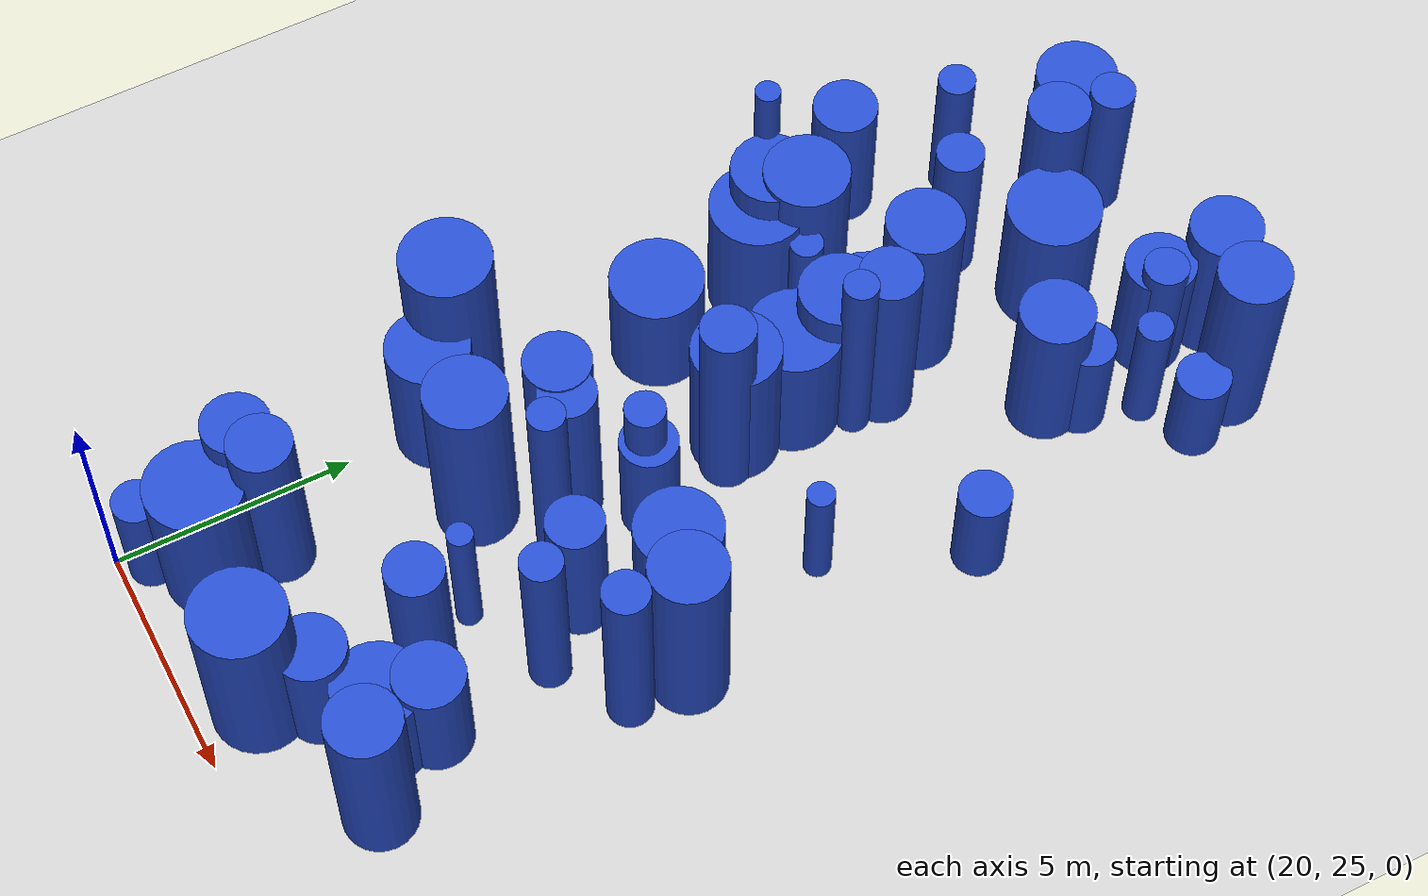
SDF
<sdf version="1.6">
 <world name="default">
  <model name="ground_plane">
   <static>1</static>
   <link name="link">
    <collision name="collision">
     <geometry><plane><normal>0 0 1</normal><size>100 100</size></plane></geometry>
     <surface><friction><ode><mu>100</mu><mu2>50</mu2></ode></friction></surface>
    </collision>
    <visual name="visual">
     <cast_shadows>0</cast_shadows>
     <geometry><plane><normal>0 0 1</normal><size>100 100</size></plane></geometry>
     <material>
      <script><uri>file://media/materials/scripts/gazebo.material</uri><name>Gazebo/Grey</name></script>
     </material>
    </visual>
   </link>
  </model>
  <model name="6">
   <static>0</static>
   <link name="link">
    <inertial>
     <mass>2</mass>
     <inertia><ixx>1.37461</ixx><ixy>0</ixy><ixz>0</ixz><iyy>1.37461</iyy><iyz>0</iyz><izz>0.826308</izz></inertia>
    </inertial>
    <collision name="collision">
     <geometry><cylinder><length>2.40182</length><radius>0.909015</radius></cylinder></geometry>
     <surface><contact><collide_without_contact>1</collide_without_contact></contact></surface>
    </collision>
    <visual name="visual">
     <geometry><cylinder><length>2.40182</length><radius>0.909015</radius></cylinder></geometry>
     <material>
      <script><uri>file://media/materials/scripts/gazebo.material</uri><name>Gazebo/Blue</name></script>
     </material>
    </visual>
    <gravity>0</gravity>
   </link>
   <pose>25.9791 28.1484 1.20091 0 -0 0</pose>
  </model>
  <model name="23">
   <static>0</static>
   <link name="link">
    <inertial>
     <mass>2</mass>
     <inertia><ixx>2.13264</ixx><ixy>0</ixy><ixz>0</ixz><iyy>2.13264</iyy><iyz>0</iyz><izz>0.34742</izz></inertia>
    </inertial>
    <collision name="collision">
     <geometry><cylinder><length>3.42835</length><radius>0.589423</radius></cylinder></geometry>
     <surface><contact><collide_without_contact>1</collide_without_contact></contact></surface>
    </collision>
    <visual name="visual">
     <geometry><cylinder><length>3.42835</length><radius>0.589423</radius></cylinder></geometry>
     <material>
      <script><uri>file://media/materials/scripts/gazebo.material</uri><name>Gazebo/Blue</name></script>
     </material>
    </visual>
    <gravity>0</gravity>
   </link>
   <pose>25.0737 32.6969 1.71417 0 -0 0</pose>
  </model>
  <model name="26">
   <static>0</static>
   <link name="link">
    <inertial>
     <mass>2</mass>
     <inertia><ixx>2.66427</ixx><ixy>0</ixy><ixz>0</ixz><iyy>2.66427</iyy><iyz>0</iyz><izz>0.704227</izz></inertia>
    </inertial>
    <collision name="collision">
     <geometry><cylinder><length>3.72464</length><radius>0.839182</radius></cylinder></geometry>
     <surface><contact><collide_without_contact>1</collide_without_contact></contact></surface>
    </collision>
    <visual name="visual">
     <geometry><cylinder><length>3.72464</length><radius>0.839182</radius></cylinder></geometry>
     <material>
      <script><uri>file://media/materials/scripts/gazebo.material</uri><name>Gazebo/Blue</name></script>
     </material>
    </visual>
    <gravity>0</gravity>
   </link>
   <pose>19.7542 39.6332 1.86232 0 -0 0</pose>
  </model>
  <model name="31">
   <static>0</static>
   <link name="link">
    <inertial>
     <mass>2</mass>
     <inertia><ixx>2.57392</ixx><ixy>0</ixy><ixz>0</ixz><iyy>2.57392</iyy><iyz>0</iyz><izz>0.71737</izz></inertia>
    </inertial>
    <collision name="collision">
     <geometry><cylinder><length>3.64574</length><radius>0.846977</radius></cylinder></geometry>
     <surface><contact><collide_without_contact>1</collide_without_contact></contact></surface>
    </collision>
    <visual name="visual">
     <geometry><cylinder><length>3.64574</length><radius>0.846977</radius></cylinder></geometry>
     <material>
      <script><uri>file://media/materials/scripts/gazebo.material</uri><name>Gazebo/Blue</name></script>
     </material>
    </visual>
    <gravity>0</gravity>
   </link>
   <pose>22.8649 39.5204 1.82287 0 -0 0</pose>
  </model>
  <model name="37">
   <static>0</static>
   <link name="link">
    <inertial>
     <mass>2</mass>
     <inertia><ixx>3.04398</ixx><ixy>0</ixy><ixz>0</ixz><iyy>3.04398</iyy><iyz>0</iyz><izz>0.92073</izz></inertia>
    </inertial>
    <collision name="collision">
     <geometry><cylinder><length>3.93722</length><radius>0.959547</radius></cylinder></geometry>
     <surface><contact><collide_without_contact>1</collide_without_contact></contact></surface>
    </collision>
    <visual name="visual">
     <geometry><cylinder><length>3.93722</length><radius>0.959547</radius></cylinder></geometry>
     <material>
      <script><uri>file://media/materials/scripts/gazebo.material</uri><name>Gazebo/Blue</name></script>
     </material>
    </visual>
    <gravity>0</gravity>
   </link>
   <pose>24.2494 26.2747 1.96861 0 -0 0</pose>
  </model>
  <model name="61">
   <static>0</static>
   <link name="link">
    <inertial>
     <mass>2</mass>
     <inertia><ixx>1.98038</ixx><ixy>0</ixy><ixz>0</ixz><iyy>1.98038</iyy><iyz>0</iyz><izz>0.205126</izz></inertia>
    </inertial>
    <collision name="collision">
     <geometry><cylinder><length>3.35662</length><radius>0.452909</radius></cylinder></geometry>
     <surface><contact><collide_without_contact>1</collide_without_contact></contact></surface>
    </collision>
    <visual name="visual">
     <geometry><cylinder><length>3.35662</length><radius>0.452909</radius></cylinder></geometry>
     <material>
      <script><uri>file://media/materials/scripts/gazebo.material</uri><name>Gazebo/Blue</name></script>
     </material>
    </visual>
    <gravity>0</gravity>
   </link>
   <pose>25.1371 45.5648 1.67831 0 -0 0</pose>
  </model>
  <model name="62">
   <static>0</static>
   <link name="link">
    <inertial>
     <mass>2</mass>
     <inertia><ixx>2.47347</ixx><ixy>0</ixy><ixz>0</ixz><iyy>2.47347</iyy><iyz>0</iyz><izz>0.98743</izz></inertia>
    </inertial>
    <collision name="collision">
     <geometry><cylinder><length>3.44652</length><radius>0.993695</radius></cylinder></geometry>
     <surface><contact><collide_without_contact>1</collide_without_contact></contact></surface>
    </collision>
    <visual name="visual">
     <geometry><cylinder><length>3.44652</length><radius>0.993695</radius></cylinder></geometry>
     <material>
      <script><uri>file://media/materials/scripts/gazebo.material</uri><name>Gazebo/Blue</name></script>
     </material>
    </visual>
    <gravity>0</gravity>
   </link>
   <pose>21.1142 26.6464 1.72326 0 -0 0</pose>
  </model>
  <model name="71">
   <static>0</static>
   <link name="link">
    <inertial>
     <mass>2</mass>
     <inertia><ixx>3.59264</ixx><ixy>0</ixy><ixz>0</ixz><iyy>3.59264</iyy><iyz>0</iyz><izz>0.399079</izz></inertia>
    </inertial>
    <collision name="collision">
     <geometry><cylinder><length>4.51205</length><radius>0.631727</radius></cylinder></geometry>
     <surface><contact><collide_without_contact>1</collide_without_contact></contact></surface>
    </collision>
    <visual name="visual">
     <geometry><cylinder><length>4.51205</length><radius>0.631727</radius></cylinder></geometry>
     <material>
      <script><uri>file://media/materials/scripts/gazebo.material</uri><name>Gazebo/Blue</name></script>
     </material>
    </visual>
    <gravity>0</gravity>
   </link>
   <pose>23.478 40.2505 2.25603 0 -0 0</pose>
  </model>
  <model name="90">
   <static>0</static>
   <link name="link">
    <inertial>
     <mass>2</mass>
     <inertia><ixx>1.25348</ixx><ixy>0</ixy><ixz>0</ixz><iyy>1.25348</iyy><iyz>0</iyz><izz>0.890795</izz></inertia>
    </inertial>
    <collision name="collision">
     <geometry><cylinder><length>2.20193</length><radius>0.943819</radius></cylinder></geometry>
     <surface><contact><collide_without_contact>1</collide_without_contact></contact></surface>
    </collision>
    <visual name="visual">
     <geometry><cylinder><length>2.20193</length><radius>0.943819</radius></cylinder></geometry>
     <material>
      <script><uri>file://media/materials/scripts/gazebo.material</uri><name>Gazebo/Blue</name></script>
     </material>
    </visual>
    <gravity>0</gravity>
   </link>
   <pose>22.3331 40.4778 1.10096 0 -0 0</pose>
  </model>
  <model name="118">
   <static>0</static>
   <link name="link">
    <inertial>
     <mass>2</mass>
     <inertia><ixx>1.18813</ixx><ixy>0</ixy><ixz>0</ixz><iyy>1.18813</iyy><iyz>0</iyz><izz>0.232355</izz></inertia>
    </inertial>
    <collision name="collision">
     <geometry><cylinder><length>2.53608</length><radius>0.482032</radius></cylinder></geometry>
     <surface><contact><collide_without_contact>1</collide_without_contact></contact></surface>
    </collision>
    <visual name="visual">
     <geometry><cylinder><length>2.53608</length><radius>0.482032</radius></cylinder></geometry>
     <material>
      <script><uri>file://media/materials/scripts/gazebo.material</uri><name>Gazebo/Blue</name></script>
     </material>
    </visual>
    <gravity>0</gravity>
   </link>
   <pose>20.3931 25.6293 1.26804 0 -0 0</pose>
  </model>
  <model name="121">
   <static>0</static>
   <link name="link">
    <inertial>
     <mass>2</mass>
     <inertia><ixx>2.19147</ixx><ixy>0</ixy><ixz>0</ixz><iyy>2.19147</iyy><iyz>0</iyz><izz>0.213321</izz></inertia>
    </inertial>
    <collision name="collision">
     <geometry><cylinder><length>3.53679</length><radius>0.461867</radius></cylinder></geometry>
     <surface><contact><collide_without_contact>1</collide_without_contact></contact></surface>
    </collision>
    <visual name="visual">
     <geometry><cylinder><length>3.53679</length><radius>0.461867</radius></cylinder></geometry>
     <material>
      <script><uri>file://media/materials/scripts/gazebo.material</uri><name>Gazebo/Blue</name></script>
     </material>
    </visual>
    <gravity>0</gravity>
   </link>
   <pose>21.0757 46.7296 1.76839 0 -0 0</pose>
  </model>
  <model name="130">
   <static>0</static>
   <link name="link">
    <inertial>
     <mass>2</mass>
     <inertia><ixx>2.08421</ixx><ixy>0</ixy><ixz>0</ixz><iyy>2.08421</iyy><iyz>0</iyz><izz>0.73609</izz></inertia>
    </inertial>
    <collision name="collision">
     <geometry><cylinder><length>3.20889</length><radius>0.857957</radius></cylinder></geometry>
     <surface><contact><collide_without_contact>1</collide_without_contact></contact></surface>
    </collision>
    <visual name="visual">
     <geometry><cylinder><length>3.20889</length><radius>0.857957</radius></cylinder></geometry>
     <material>
      <script><uri>file://media/materials/scripts/gazebo.material</uri><name>Gazebo/Blue</name></script>
     </material>
    </visual>
    <gravity>0</gravity>
   </link>
   <pose>20.1641 31.8975 1.60445 0 -0 0</pose>
  </model>
  <model name="131">
   <static>0</static>
   <link name="link">
    <inertial>
     <mass>2</mass>
     <inertia><ixx>1.453</ixx><ixy>0</ixy><ixz>0</ixz><iyy>1.453</iyy><iyz>0</iyz><izz>0.351605</izz></inertia>
    </inertial>
    <collision name="collision">
     <geometry><cylinder><length>2.76824</length><radius>0.592963</radius></cylinder></geometry>
     <surface><contact><collide_without_contact>1</collide_without_contact></contact></surface>
    </collision>
    <visual name="visual">
     <geometry><cylinder><length>2.76824</length><radius>0.592963</radius></cylinder></geometry>
     <material>
      <script><uri>file://media/materials/scripts/gazebo.material</uri><name>Gazebo/Blue</name></script>
     </material>
    </visual>
    <gravity>0</gravity>
   </link>
   <pose>23.7772 34.883 1.38412 0 -0 0</pose>
  </model>
  <model name="133">
   <static>0</static>
   <link name="link">
    <inertial>
     <mass>2</mass>
     <inertia><ixx>3.39922</ixx><ixy>0</ixy><ixz>0</ixz><iyy>3.39922</iyy><iyz>0</iyz><izz>0.407342</izz></inertia>
    </inertial>
    <collision name="collision">
     <geometry><cylinder><length>4.37873</length><radius>0.638233</radius></cylinder></geometry>
     <surface><contact><collide_without_contact>1</collide_without_contact></contact></surface>
    </collision>
    <visual name="visual">
     <geometry><cylinder><length>4.37873</length><radius>0.638233</radius></cylinder></geometry>
     <material>
      <script><uri>file://media/materials/scripts/gazebo.material</uri><name>Gazebo/Blue</name></script>
     </material>
    </visual>
    <gravity>0</gravity>
   </link>
   <pose>21.4511 45.1741 2.18937 0 -0 0</pose>
  </model>
  <model name="152">
   <static>0</static>
   <link name="link">
    <inertial>
     <mass>2</mass>
     <inertia><ixx>3.0223</ixx><ixy>0</ixy><ixz>0</ixz><iyy>3.0223</iyy><iyz>0</iyz><izz>0.469931</izz></inertia>
    </inertial>
    <collision name="collision">
     <geometry><cylinder><length>4.0895</length><radius>0.685515</radius></cylinder></geometry>
     <surface><contact><collide_without_contact>1</collide_without_contact></contact></surface>
    </collision>
    <visual name="visual">
     <geometry><cylinder><length>4.0895</length><radius>0.685515</radius></cylinder></geometry>
     <material>
      <script><uri>file://media/materials/scripts/gazebo.material</uri><name>Gazebo/Blue</name></script>
     </material>
    </visual>
    <gravity>0</gravity>
   </link>
   <pose>22.115 33.7828 2.04475 0 -0 0</pose>
  </model>
  <model name="166">
   <static>0</static>
   <link name="link">
    <inertial>
     <mass>2</mass>
     <inertia><ixx>1.5574</ixx><ixy>0</ixy><ixz>0</ixz><iyy>1.5574</iyy><iyz>0</iyz><izz>0.124894</izz></inertia>
    </inertial>
    <collision name="collision">
     <geometry><cylinder><length>2.99495</length><radius>0.353403</radius></cylinder></geometry>
     <surface><contact><collide_without_contact>1</collide_without_contact></contact></surface>
    </collision>
    <visual name="visual">
     <geometry><cylinder><length>2.99495</length><radius>0.353403</radius></cylinder></geometry>
     <material>
      <script><uri>file://media/materials/scripts/gazebo.material</uri><name>Gazebo/Blue</name></script>
     </material>
    </visual>
    <gravity>0</gravity>
   </link>
   <pose>26.0606 44.8052 1.49748 0 -0 0</pose>
  </model>
  <model name="169">
   <static>0</static>
   <link name="link">
    <inertial>
     <mass>2</mass>
     <inertia><ixx>3.98314</ixx><ixy>0</ixy><ixz>0</ixz><iyy>3.98314</iyy><iyz>0</iyz><izz>0.125619</izz></inertia>
    </inertial>
    <collision name="collision">
     <geometry><cylinder><length>4.84995</length><radius>0.354428</radius></cylinder></geometry>
     <surface><contact><collide_without_contact>1</collide_without_contact></contact></surface>
    </collision>
    <visual name="visual">
     <geometry><cylinder><length>4.84995</length><radius>0.354428</radius></cylinder></geometry>
     <material>
      <script><uri>file://media/materials/scripts/gazebo.material</uri><name>Gazebo/Blue</name></script>
     </material>
    </visual>
    <gravity>0</gravity>
   </link>
   <pose>23.6433 39.4979 2.42497 0 -0 0</pose>
  </model>
  <model name="185">
   <static>0</static>
   <link name="link">
    <inertial>
     <mass>2</mass>
     <inertia>
      <ixx>0.926216</ixx>
      <ixy>0</ixy>
      <ixz>0</ixz>
      <iyy>0.926216</iyy>
      <iyz>0</iyz>
      <izz>0.103612</izz>
     </inertia>
    </inertial>
    <collision name="collision">
     <geometry><cylinder><length>2.29052</length><radius>0.321888</radius></cylinder></geometry>
     <surface><contact><collide_without_contact>1</collide_without_contact></contact></surface>
    </collision>
    <visual name="visual">
     <geometry><cylinder><length>2.29052</length><radius>0.321888</radius></cylinder></geometry>
     <material>
      <script><uri>file://media/materials/scripts/gazebo.material</uri><name>Gazebo/Blue</name></script>
     </material>
    </visual>
    <gravity>0</gravity>
   </link>
   <pose>19.2132 47.1003 1.14526 0 -0 0</pose>
  </model>
  <model name="190">
   <static>0</static>
   <link name="link">
    <inertial>
     <mass>2</mass>
     <inertia><ixx>2.32648</ixx><ixy>0</ixy><ixz>0</ixz><iyy>2.32648</iyy><iyz>0</iyz><izz>0.241289</izz></inertia>
    </inertial>
    <collision name="collision">
     <geometry><cylinder><length>3.63799</length><radius>0.491212</radius></cylinder></geometry>
     <surface><contact><collide_without_contact>1</collide_without_contact></contact></surface>
    </collision>
    <visual name="visual">
     <geometry><cylinder><length>3.63799</length><radius>0.491212</radius></cylinder></geometry>
     <material>
      <script><uri>file://media/materials/scripts/gazebo.material</uri><name>Gazebo/Blue</name></script>
     </material>
    </visual>
    <gravity>0</gravity>
   </link>
   <pose>21.0742 43.1879 1.819 0 -0 0</pose>
  </model>
  <model name="192">
   <static>0</static>
   <link name="link">
    <inertial>
     <mass>2</mass>
     <inertia><ixx>2.03155</ixx><ixy>0</ixy><ixz>0</ixz><iyy>2.03155</iyy><iyz>0</iyz><izz>0.938977</izz></inertia>
    </inertial>
    <collision name="collision">
     <geometry><cylinder><length>3.06143</length><radius>0.969008</radius></cylinder></geometry>
     <surface><contact><collide_without_contact>1</collide_without_contact></contact></surface>
    </collision>
    <visual name="visual">
     <geometry><cylinder><length>3.06143</length><radius>0.969008</radius></cylinder></geometry>
     <material>
      <script><uri>file://media/materials/scripts/gazebo.material</uri><name>Gazebo/Blue</name></script>
     </material>
    </visual>
    <gravity>0</gravity>
   </link>
   <pose>22.7298 44.454 1.53071 0 -0 0</pose>
  </model>
  <model name="203">
   <static>0</static>
   <link name="link">
    <inertial>
     <mass>2</mass>
     <inertia><ixx>2.43752</ixx><ixy>0</ixy><ixz>0</ixz><iyy>2.43752</iyy><iyz>0</iyz><izz>0.827022</izz></inertia>
    </inertial>
    <collision name="collision">
     <geometry><cylinder><length>3.48483</length><radius>0.909407</radius></cylinder></geometry>
     <surface><contact><collide_without_contact>1</collide_without_contact></contact></surface>
    </collision>
    <visual name="visual">
     <geometry><cylinder><length>3.48483</length><radius>0.909407</radius></cylinder></geometry>
     <material>
      <script><uri>file://media/materials/scripts/gazebo.material</uri><name>Gazebo/Blue</name></script>
     </material>
    </visual>
    <gravity>0</gravity>
   </link>
   <pose>23.0683 37.1293 1.74242 0 -0 0</pose>
  </model>
  <model name="210">
   <static>0</static>
   <link name="link">
    <inertial>
     <mass>2</mass>
     <inertia>
      <ixx>0.923363</ixx>
      <ixy>0</ixy>
      <ixz>0</ixz>
      <iyy>0.923363</iyy>
      <iyz>0</iyz>
      <izz>0.306376</izz>
     </inertia>
    </inertial>
    <collision name="collision">
     <geometry><cylinder><length>2.14966</length><radius>0.553512</radius></cylinder></geometry>
     <surface><contact><collide_without_contact>1</collide_without_contact></contact></surface>
    </collision>
    <visual name="visual">
     <geometry><cylinder><length>2.14966</length><radius>0.553512</radius></cylinder></geometry>
     <material>
      <script><uri>file://media/materials/scripts/gazebo.material</uri><name>Gazebo/Blue</name></script>
     </material>
    </visual>
    <gravity>0</gravity>
   </link>
   <pose>27.0623 45.4208 1.07483 0 -0 0</pose>
  </model>
  <model name="231">
   <static>0</static>
   <link name="link">
    <inertial>
     <mass>2</mass>
     <inertia><ixx>1.42993</ixx><ixy>0</ixy><ixz>0</ixz><iyy>1.42993</iyy><iyz>0</iyz><izz>0.118213</izz></inertia>
    </inertial>
    <collision name="collision">
     <geometry><cylinder><length>2.86792</length><radius>0.343821</radius></cylinder></geometry>
     <surface><contact><collide_without_contact>1</collide_without_contact></contact></surface>
    </collision>
    <visual name="visual">
     <geometry><cylinder><length>2.86792</length><radius>0.343821</radius></cylinder></geometry>
     <material>
      <script><uri>file://media/materials/scripts/gazebo.material</uri><name>Gazebo/Blue</name></script>
     </material>
    </visual>
    <gravity>0</gravity>
   </link>
   <pose>21.1521 39.6977 1.43396 0 -0 0</pose>
  </model>
  <model name="235">
   <static>0</static>
   <link name="link">
    <inertial>
     <mass>2</mass>
     <inertia><ixx>3.64645</ixx><ixy>0</ixy><ixz>0</ixz><iyy>3.64645</iyy><iyz>0</iyz><izz>0.222826</izz></inertia>
    </inertial>
    <collision name="collision">
     <geometry><cylinder><length>4.60545</length><radius>0.472045</radius></cylinder></geometry>
     <surface><contact><collide_without_contact>1</collide_without_contact></contact></surface>
    </collision>
    <visual name="visual">
     <geometry><cylinder><length>4.60545</length><radius>0.472045</radius></cylinder></geometry>
     <material>
      <script><uri>file://media/materials/scripts/gazebo.material</uri><name>Gazebo/Blue</name></script>
     </material>
    </visual>
    <gravity>0</gravity>
   </link>
   <pose>27.4192 32.6272 2.30273 0 -0 0</pose>
  </model>
  <model name="236">
   <static>0</static>
   <link name="link">
    <inertial>
     <mass>2</mass>
     <inertia><ixx>1.38269</ixx><ixy>0</ixy><ixz>0</ixz><iyy>1.38269</iyy><iyz>0</iyz><izz>0.521425</izz></inertia>
    </inertial>
    <collision name="collision">
     <geometry><cylinder><length>2.59459</length><radius>0.722097</radius></cylinder></geometry>
     <surface><contact><collide_without_contact>1</collide_without_contact></contact></surface>
    </collision>
    <visual name="visual">
     <geometry><cylinder><length>2.59459</length><radius>0.722097</radius></cylinder></geometry>
     <material>
      <script><uri>file://media/materials/scripts/gazebo.material</uri><name>Gazebo/Blue</name></script>
     </material>
    </visual>
    <gravity>0</gravity>
   </link>
   <pose>26.321 29.0593 1.29729 0 -0 0</pose>
  </model>
  <model name="247">
   <static>0</static>
   <link name="link">
    <inertial>
     <mass>2</mass>
     <inertia><ixx>3.22151</ixx><ixy>0</ixy><ixz>0</ixz><iyy>3.22151</iyy><iyz>0</iyz><izz>0.345206</izz></inertia>
    </inertial>
    <collision name="collision">
     <geometry><cylinder><length>4.27708</length><radius>0.587543</radius></cylinder></geometry>
     <surface><contact><collide_without_contact>1</collide_without_contact></contact></surface>
    </collision>
    <visual name="visual">
     <geometry><cylinder><length>4.27708</length><radius>0.587543</radius></cylinder></geometry>
     <material>
      <script><uri>file://media/materials/scripts/gazebo.material</uri><name>Gazebo/Blue</name></script>
     </material>
    </visual>
    <gravity>0</gravity>
   </link>
   <pose>25.0728 29.4698 2.13854 0 -0 0</pose>
  </model>
  <model name="250">
   <static>0</static>
   <link name="link">
    <inertial>
     <mass>2</mass>
     <inertia><ixx>2.09211</ixx><ixy>0</ixy><ixz>0</ixz><iyy>2.09211</iyy><iyz>0</iyz><izz>0.992095</izz></inertia>
    </inertial>
    <collision name="collision">
     <geometry><cylinder><length>3.09457</length><radius>0.99604</radius></cylinder></geometry>
     <surface><contact><collide_without_contact>1</collide_without_contact></contact></surface>
    </collision>
    <visual name="visual">
     <geometry><cylinder><length>3.09457</length><radius>0.99604</radius></cylinder></geometry>
     <material>
      <script><uri>file://media/materials/scripts/gazebo.material</uri><name>Gazebo/Blue</name></script>
     </material>
    </visual>
    <gravity>0</gravity>
   </link>
   <pose>20.0275 39.193 1.54728 0 -0 0</pose>
  </model>
  <model name="264">
   <static>0</static>
   <link name="link">
    <inertial>
     <mass>2</mass>
     <inertia><ixx>2.4</ixx><ixy>0</ixy><ixz>0</ixz><iyy>2.4</iyy><iyz>0</iyz><izz>0.580652</izz></inertia>
    </inertial>
    <collision name="collision">
     <geometry><cylinder><length>3.55782</length><radius>0.762005</radius></cylinder></geometry>
     <surface><contact><collide_without_contact>1</collide_without_contact></contact></surface>
    </collision>
    <visual name="visual">
     <geometry><cylinder><length>3.55782</length><radius>0.762005</radius></cylinder></geometry>
     <material>
      <script><uri>file://media/materials/scripts/gazebo.material</uri><name>Gazebo/Blue</name></script>
     </material>
    </visual>
    <gravity>0</gravity>
   </link>
   <pose>25.1831 43.0487 1.77891 0 -0 0</pose>
  </model>
  <model name="277">
   <static>0</static>
   <link name="link">
    <inertial>
     <mass>2</mass>
     <inertia><ixx>2.89982</ixx><ixy>0</ixy><ixz>0</ixz><iyy>2.89982</iyy><iyz>0</iyz><izz>0.349394</izz></inertia>
    </inertial>
    <collision name="collision">
     <geometry><cylinder><length>4.0436</length><radius>0.591096</radius></cylinder></geometry>
     <surface><contact><collide_without_contact>1</collide_without_contact></contact></surface>
    </collision>
    <visual name="visual">
     <geometry><cylinder><length>4.0436</length><radius>0.591096</radius></cylinder></geometry>
     <material>
      <script><uri>file://media/materials/scripts/gazebo.material</uri><name>Gazebo/Blue</name></script>
     </material>
    </visual>
    <gravity>0</gravity>
   </link>
   <pose>22.7978 33.6579 2.0218 0 -0 0</pose>
  </model>
  <model name="290">
   <static>0</static>
   <link name="link">
    <inertial>
     <mass>2</mass>
     <inertia><ixx>3.39034</ixx><ixy>0</ixy><ixz>0</ixz><iyy>3.39034</iyy><iyz>0</iyz><izz>0.757932</izz></inertia>
    </inertial>
    <collision name="collision">
     <geometry><cylinder><length>4.25068</length><radius>0.870593</radius></cylinder></geometry>
     <surface><contact><collide_without_contact>1</collide_without_contact></contact></surface>
    </collision>
    <visual name="visual">
     <geometry><cylinder><length>4.25068</length><radius>0.870593</radius></cylinder></geometry>
     <material>
      <script><uri>file://media/materials/scripts/gazebo.material</uri><name>Gazebo/Blue</name></script>
     </material>
    </visual>
    <gravity>0</gravity>
   </link>
   <pose>26.4652 34.1736 2.12534 0 -0 0</pose>
  </model>
  <model name="305">
   <static>0</static>
   <link name="link">
    <inertial>
     <mass>2</mass>
     <inertia><ixx>3.27637</ixx><ixy>0</ixy><ixz>0</ixz><iyy>3.27637</iyy><iyz>0</iyz><izz>0.624267</izz></inertia>
    </inertial>
    <collision name="collision">
     <geometry><cylinder><length>4.21727</length><radius>0.790106</radius></cylinder></geometry>
     <surface><contact><collide_without_contact>1</collide_without_contact></contact></surface>
    </collision>
    <visual name="visual">
     <geometry><cylinder><length>4.21727</length><radius>0.790106</radius></cylinder></geometry>
     <material>
      <script><uri>file://media/materials/scripts/gazebo.material</uri><name>Gazebo/Blue</name></script>
     </material>
    </visual>
    <gravity>0</gravity>
   </link>
   <pose>22.5455 41.5344 2.10864 0 -0 0</pose>
  </model>
  <model name="350">
   <static>0</static>
   <link name="link">
    <inertial>
     <mass>2</mass>
     <inertia><ixx>1.67914</ixx><ixy>0</ixy><ixz>0</ixz><iyy>1.67914</iyy><iyz>0</iyz><izz>0.715868</izz></inertia>
    </inertial>
    <collision name="collision">
     <geometry><cylinder><length>2.81554</length><radius>0.84609</radius></cylinder></geometry>
     <surface><contact><collide_without_contact>1</collide_without_contact></contact></surface>
    </collision>
    <visual name="visual">
     <geometry><cylinder><length>2.81554</length><radius>0.84609</radius></cylinder></geometry>
     <material>
      <script><uri>file://media/materials/scripts/gazebo.material</uri><name>Gazebo/Blue</name></script>
     </material>
    </visual>
    <gravity>0</gravity>
   </link>
   <pose>19.9374 46.6261 1.40777 0 -0 0</pose>
  </model>
  <model name="354">
   <static>0</static>
   <link name="link">
    <inertial>
     <mass>2</mass>
     <inertia><ixx>1.21627</ixx><ixy>0</ixy><ixz>0</ixz><iyy>1.21627</iyy><iyz>0</iyz><izz>0.284713</izz></inertia>
    </inertial>
    <collision name="collision">
     <geometry><cylinder><length>2.5384</length><radius>0.533585</radius></cylinder></geometry>
     <surface><contact><collide_without_contact>1</collide_without_contact></contact></surface>
    </collision>
    <visual name="visual">
     <geometry><cylinder><length>2.5384</length><radius>0.533585</radius></cylinder></geometry>
     <material>
      <script><uri>file://media/materials/scripts/gazebo.material</uri><name>Gazebo/Blue</name></script>
     </material>
    </visual>
    <gravity>0</gravity>
   </link>
   <pose>25.5976 43.644 1.2692 0 -0 0</pose>
  </model>
  <model name="357">
   <static>0</static>
   <link name="link">
    <inertial>
     <mass>2</mass>
     <inertia><ixx>1.4515</ixx><ixy>0</ixy><ixz>0</ixz><iyy>1.4515</iyy><iyz>0</iyz><izz>0.519763</izz></inertia>
    </inertial>
    <collision name="collision">
     <geometry><cylinder><length>2.6739</length><radius>0.720946</radius></cylinder></geometry>
     <surface><contact><collide_without_contact>1</collide_without_contact></contact></surface>
    </collision>
    <visual name="visual">
     <geometry><cylinder><length>2.6739</length><radius>0.720946</radius></cylinder></geometry>
     <material>
      <script><uri>file://media/materials/scripts/gazebo.material</uri><name>Gazebo/Blue</name></script>
     </material>
    </visual>
    <gravity>0</gravity>
   </link>
   <pose>24.838 27.3199 1.33695 0 -0 0</pose>
  </model>
  <model name="359">
   <static>0</static>
   <link name="link">
    <inertial>
     <mass>2</mass>
     <inertia><ixx>2.8409</ixx><ixy>0</ixy><ixz>0</ixz><iyy>2.8409</iyy><iyz>0</iyz><izz>0.779335</izz></inertia>
    </inertial>
    <collision name="collision">
     <geometry><cylinder><length>3.83503</length><radius>0.8828</radius></cylinder></geometry>
     <surface><contact><collide_without_contact>1</collide_without_contact></contact></surface>
    </collision>
    <visual name="visual">
     <geometry><cylinder><length>3.83503</length><radius>0.8828</radius></cylinder></geometry>
     <material>
      <script><uri>file://media/materials/scripts/gazebo.material</uri><name>Gazebo/Blue</name></script>
     </material>
    </visual>
    <gravity>0</gravity>
   </link>
   <pose>20.1993 40.1799 1.91751 0 -0 0</pose>
  </model>
  <model name="360">
   <static>0</static>
   <link name="link">
    <inertial>
     <mass>2</mass>
     <inertia><ixx>4.13819</ixx><ixy>0</ixy><ixz>0</ixz><iyy>4.13819</iyy><iyz>0</iyz><izz>0.067067</izz></inertia>
    </inertial>
    <collision name="collision">
     <geometry><cylinder><length>4.96265</length><radius>0.258973</radius></cylinder></geometry>
     <surface><contact><collide_without_contact>1</collide_without_contact></contact></surface>
    </collision>
    <visual name="visual">
     <geometry><cylinder><length>4.96265</length><radius>0.258973</radius></cylinder></geometry>
     <material>
      <script><uri>file://media/materials/scripts/gazebo.material</uri><name>Gazebo/Blue</name></script>
     </material>
    </visual>
    <gravity>0</gravity>
   </link>
   <pose>18.86 39.9893 2.48133 0 -0 0</pose>
  </model>
  <model name="364">
   <static>0</static>
   <link name="link">
    <inertial>
     <mass>2</mass>
     <inertia><ixx>1.5267</ixx><ixy>0</ixy><ixz>0</ixz><iyy>1.5267</iyy><iyz>0</iyz><izz>0.932266</izz></inertia>
    </inertial>
    <collision name="collision">
     <geometry><cylinder><length>2.52258</length><radius>0.965539</radius></cylinder></geometry>
     <surface><contact><collide_without_contact>1</collide_without_contact></contact></surface>
    </collision>
    <visual name="visual">
     <geometry><cylinder><length>2.52258</length><radius>0.965539</radius></cylinder></geometry>
     <material>
      <script><uri>file://media/materials/scripts/gazebo.material</uri><name>Gazebo/Blue</name></script>
     </material>
    </visual>
    <gravity>0</gravity>
   </link>
   <pose>20.346 36.7642 1.26129 0 -0 0</pose>
  </model>
  <model name="366">
   <static>0</static>
   <link name="link">
    <inertial>
     <mass>2</mass>
     <inertia><ixx>3.69509</ixx><ixy>0</ixy><ixz>0</ixz><iyy>3.69509</iyy><iyz>0</iyz><izz>0.699388</izz></inertia>
    </inertial>
    <collision name="collision">
     <geometry><cylinder><length>4.48022</length><radius>0.836294</radius></cylinder></geometry>
     <surface><contact><collide_without_contact>1</collide_without_contact></contact></surface>
    </collision>
    <visual name="visual">
     <geometry><cylinder><length>4.48022</length><radius>0.836294</radius></cylinder></geometry>
     <material>
      <script><uri>file://media/materials/scripts/gazebo.material</uri><name>Gazebo/Blue</name></script>
     </material>
    </visual>
    <gravity>0</gravity>
   </link>
   <pose>22.1671 31.8475 2.24011 0 -0 0</pose>
  </model>
  <model name="368">
   <static>0</static>
   <link name="link">
    <inertial>
     <mass>2</mass>
     <inertia><ixx>2.28712</ixx><ixy>0</ixy><ixz>0</ixz><iyy>2.28712</iyy><iyz>0</iyz><izz>0.554921</izz></inertia>
    </inertial>
    <collision name="collision">
     <geometry><cylinder><length>3.47246</length><radius>0.74493</radius></cylinder></geometry>
     <surface><contact><collide_without_contact>1</collide_without_contact></contact></surface>
    </collision>
    <visual name="visual">
     <geometry><cylinder><length>3.47246</length><radius>0.74493</radius></cylinder></geometry>
     <material>
      <script><uri>file://media/materials/scripts/gazebo.material</uri><name>Gazebo/Blue</name></script>
     </material>
    </visual>
    <gravity>0</gravity>
   </link>
   <pose>24.9259 47.0585 1.73623 0 -0 0</pose>
  </model>
  <model name="375">
   <static>0</static>
   <link name="link">
    <inertial>
     <mass>2</mass>
     <inertia><ixx>4.128</ixx><ixy>0</ixy><ixz>0</ixz><iyy>4.128</iyy><iyz>0</iyz><izz>0.142563</izz></inertia>
    </inertial>
    <collision name="collision">
     <geometry><cylinder><length>4.93359</length><radius>0.377575</radius></cylinder></geometry>
     <surface><contact><collide_without_contact>1</collide_without_contact></contact></surface>
    </collision>
    <visual name="visual">
     <geometry><cylinder><length>4.93359</length><radius>0.377575</radius></cylinder></geometry>
     <material>
      <script><uri>file://media/materials/scripts/gazebo.material</uri><name>Gazebo/Blue</name></script>
     </material>
    </visual>
    <gravity>0</gravity>
   </link>
   <pose>23.5595 32.8979 2.4668 0 -0 0</pose>
  </model>
  <model name="376">
   <static>0</static>
   <link name="link">
    <inertial>
     <mass>2</mass>
     <inertia><ixx>3.63268</ixx><ixy>0</ixy><ixz>0</ixz><iyy>3.63268</iyy><iyz>0</iyz><izz>0.545264</izz></inertia>
    </inertial>
    <collision name="collision">
     <geometry><cylinder><length>4.49002</length><radius>0.73842</radius></cylinder></geometry>
     <surface><contact><collide_without_contact>1</collide_without_contact></contact></surface>
    </collision>
    <visual name="visual">
     <geometry><cylinder><length>4.49002</length><radius>0.73842</radius></cylinder></geometry>
     <material>
      <script><uri>file://media/materials/scripts/gazebo.material</uri><name>Gazebo/Blue</name></script>
     </material>
    </visual>
    <gravity>0</gravity>
   </link>
   <pose>26.6233 46.4854 2.24501 0 -0 0</pose>
  </model>
  <model name="387">
   <static>0</static>
   <link name="link">
    <inertial>
     <mass>2</mass>
     <inertia>
      <ixx>1.33149</ixx>
      <ixy>0</ixy>
      <ixz>0</ixz>
      <iyy>1.33149</iyy>
      <iyz>0</iyz>
      <izz>0.0793408</izz>
     </inertia>
    </inertial>
    <collision name="collision">
     <geometry><cylinder><length>2.78405</length><radius>0.281675</radius></cylinder></geometry>
     <surface><contact><collide_without_contact>1</collide_without_contact></contact></surface>
    </collision>
    <visual name="visual">
     <geometry><cylinder><length>2.78405</length><radius>0.281675</radius></cylinder></geometry>
     <material>
      <script><uri>file://media/materials/scripts/gazebo.material</uri><name>Gazebo/Blue</name></script>
     </material>
    </visual>
    <gravity>0</gravity>
   </link>
   <pose>26.3215 37.2722 1.39202 0 -0 0</pose>
  </model>
  <model name="388">
   <static>0</static>
   <link name="link">
    <inertial>
     <mass>2</mass>
     <inertia><ixx>1.85616</ixx><ixy>0</ixy><ixz>0</ixz><iyy>1.85616</iyy><iyz>0</iyz><izz>0.445052</izz></inertia>
    </inertial>
    <collision name="collision">
     <geometry><cylinder><length>3.13078</length><radius>0.667122</radius></cylinder></geometry>
     <surface><contact><collide_without_contact>1</collide_without_contact></contact></surface>
    </collision>
    <visual name="visual">
     <geometry><cylinder><length>3.13078</length><radius>0.667122</radius></cylinder></geometry>
     <material>
      <script><uri>file://media/materials/scripts/gazebo.material</uri><name>Gazebo/Blue</name></script>
     </material>
    </visual>
    <gravity>0</gravity>
   </link>
   <pose>18.7036 41.8819 1.56539 0 -0 0</pose>
  </model>
  <model name="400">
   <static>0</static>
   <link name="link">
    <inertial>
     <mass>2</mass>
     <inertia><ixx>3.0161</ixx><ixy>0</ixy><ixz>0</ixz><iyy>3.0161</iyy><iyz>0</iyz><izz>0.565029</izz></inertia>
    </inertial>
    <collision name="collision">
     <geometry><cylinder><length>4.04988</length><radius>0.751684</radius></cylinder></geometry>
     <surface><contact><collide_without_contact>1</collide_without_contact></contact></surface>
    </collision>
    <visual name="visual">
     <geometry><cylinder><length>4.04988</length><radius>0.751684</radius></cylinder></geometry>
     <material>
      <script><uri>file://media/materials/scripts/gazebo.material</uri><name>Gazebo/Blue</name></script>
     </material>
    </visual>
    <gravity>0</gravity>
   </link>
   <pose>27.3457 27.4174 2.02494 0 -0 0</pose>
  </model>
  <model name="401">
   <static>0</static>
   <link name="link">
    <inertial>
     <mass>2</mass>
     <inertia><ixx>2.86499</ixx><ixy>0</ixy><ixz>0</ixz><iyy>2.86499</iyy><iyz>0</iyz><izz>0.477141</izz></inertia>
    </inertial>
    <collision name="collision">
     <geometry><cylinder><length>3.9697</length><radius>0.690754</radius></cylinder></geometry>
     <surface><contact><collide_without_contact>1</collide_without_contact></contact></surface>
    </collision>
    <visual name="visual">
     <geometry><cylinder><length>3.9697</length><radius>0.690754</radius></cylinder></geometry>
     <material>
      <script><uri>file://media/materials/scripts/gazebo.material</uri><name>Gazebo/Blue</name></script>
     </material>
    </visual>
    <gravity>0</gravity>
   </link>
   <pose>20.5338 27.8115 1.98485 0 -0 0</pose>
  </model>
  <model name="406">
   <static>0</static>
   <link name="link">
    <inertial>
     <mass>2</mass>
     <inertia><ixx>1.73581</ixx><ixy>0</ixy><ixz>0</ixz><iyy>1.73581</iyy><iyz>0</iyz><izz>0.528495</izz></inertia>
    </inertial>
    <collision name="collision">
     <geometry><cylinder><length>2.97143</length><radius>0.726977</radius></cylinder></geometry>
     <surface><contact><collide_without_contact>1</collide_without_contact></contact></surface>
    </collision>
    <visual name="visual">
     <geometry><cylinder><length>2.97143</length><radius>0.726977</radius></cylinder></geometry>
     <material>
      <script><uri>file://media/materials/scripts/gazebo.material</uri><name>Gazebo/Blue</name></script>
     </material>
    </visual>
    <gravity>0</gravity>
   </link>
   <pose>24.8155 45.6798 1.48571 0 -0 0</pose>
  </model>
  <model name="409">
   <static>0</static>
   <link name="link">
    <inertial>
     <mass>2</mass>
     <inertia>
      <ixx>1.72948</ixx>
      <ixy>0</ixy>
      <ixz>0</ixz>
      <iyy>1.72948</iyy>
      <iyz>0</iyz>
      <izz>0.0695808</izz>
     </inertia>
    </inertial>
    <collision name="collision">
     <geometry><cylinder><length>3.18875</length><radius>0.263782</radius></cylinder></geometry>
     <surface><contact><collide_without_contact>1</collide_without_contact></contact></surface>
    </collision>
    <visual name="visual">
     <geometry><cylinder><length>3.18875</length><radius>0.263782</radius></cylinder></geometry>
     <material>
      <script><uri>file://media/materials/scripts/gazebo.material</uri><name>Gazebo/Blue</name></script>
     </material>
    </visual>
    <gravity>0</gravity>
   </link>
   <pose>24.2078 30.7131 1.59438 0 -0 0</pose>
  </model>
  <model name="421">
   <static>0</static>
   <link name="link">
    <inertial>
     <mass>2</mass>
     <inertia><ixx>2.52456</ixx><ixy>0</ixy><ixz>0</ixz><iyy>2.52456</iyy><iyz>0</iyz><izz>0.171586</izz></inertia>
    </inertial>
    <collision name="collision">
     <geometry><cylinder><length>3.82526</length><radius>0.41423</radius></cylinder></geometry>
     <surface><contact><collide_without_contact>1</collide_without_contact></contact></surface>
    </collision>
    <visual name="visual">
     <geometry><cylinder><length>3.82526</length><radius>0.41423</radius></cylinder></geometry>
     <material>
      <script><uri>file://media/materials/scripts/gazebo.material</uri><name>Gazebo/Blue</name></script>
     </material>
    </visual>
    <gravity>0</gravity>
   </link>
   <pose>23.6804 34.8646 1.91263 0 -0 0</pose>
  </model>
  <model name="424">
   <static>0</static>
   <link name="link">
    <inertial>
     <mass>2</mass>
     <inertia><ixx>4.31445</ixx><ixy>0</ixy><ixz>0</ixz><iyy>4.31445</iyy><iyz>0</iyz><izz>0.308725</izz></inertia>
    </inertial>
    <collision name="collision">
     <geometry><cylinder><length>4.99605</length><radius>0.55563</radius></cylinder></geometry>
     <surface><contact><collide_without_contact>1</collide_without_contact></contact></surface>
    </collision>
    <visual name="visual">
     <geometry><cylinder><length>4.99605</length><radius>0.55563</radius></cylinder></geometry>
     <material>
      <script><uri>file://media/materials/scripts/gazebo.material</uri><name>Gazebo/Blue</name></script>
     </material>
    </visual>
    <gravity>0</gravity>
   </link>
   <pose>23.4563 36.7435 2.49802 0 -0 0</pose>
  </model>
  <model name="427">
   <static>0</static>
   <link name="link">
    <inertial>
     <mass>2</mass>
     <inertia><ixx>2.03392</ixx><ixy>0</ixy><ixz>0</ixz><iyy>2.03392</iyy><iyz>0</iyz><izz>0.14953</izz></inertia>
    </inertial>
    <collision name="collision">
     <geometry><cylinder><length>3.42855</length><radius>0.386691</radius></cylinder></geometry>
     <surface><contact><collide_without_contact>1</collide_without_contact></contact></surface>
    </collision>
    <visual name="visual">
     <geometry><cylinder><length>3.42855</length><radius>0.386691</radius></cylinder></geometry>
     <material>
      <script><uri>file://media/materials/scripts/gazebo.material</uri><name>Gazebo/Blue</name></script>
     </material>
    </visual>
    <gravity>0</gravity>
   </link>
   <pose>19.3305 44.1004 1.71428 0 -0 0</pose>
  </model>
  <model name="429">
   <static>0</static>
   <link name="link">
    <inertial>
     <mass>2</mass>
     <inertia><ixx>3.16652</ixx><ixy>0</ixy><ixz>0</ixz><iyy>3.16652</iyy><iyz>0</iyz><izz>0.182842</izz></inertia>
    </inertial>
    <collision name="collision">
     <geometry><cylinder><length>4.29542</length><radius>0.4276</radius></cylinder></geometry>
     <surface><contact><collide_without_contact>1</collide_without_contact></contact></surface>
    </collision>
    <visual name="visual">
     <geometry><cylinder><length>4.29542</length><radius>0.4276</radius></cylinder></geometry>
     <material>
      <script><uri>file://media/materials/scripts/gazebo.material</uri><name>Gazebo/Blue</name></script>
     </material>
    </visual>
    <gravity>0</gravity>
   </link>
   <pose>25.9984 31.6003 2.14771 0 -0 0</pose>
  </model>
  <model name="445">
   <static>0</static>
   <link name="link">
    <inertial>
     <mass>2</mass>
     <inertia><ixx>1.05755</ixx><ixy>0</ixy><ixz>0</ixz><iyy>1.05755</iyy><iyz>0</iyz><izz>0.282693</izz></inertia>
    </inertial>
    <collision name="collision">
     <geometry><cylinder><length>2.34461</length><radius>0.531689</radius></cylinder></geometry>
     <surface><contact><collide_without_contact>1</collide_without_contact></contact></surface>
    </collision>
    <visual name="visual">
     <geometry><cylinder><length>2.34461</length><radius>0.531689</radius></cylinder></geometry>
     <material>
      <script><uri>file://media/materials/scripts/gazebo.material</uri><name>Gazebo/Blue</name></script>
     </material>
    </visual>
    <gravity>0</gravity>
   </link>
   <pose>27.5246 40.2113 1.17231 0 -0 0</pose>
  </model>
  <model name="448">
   <static>0</static>
   <link name="link">
    <inertial>
     <mass>2</mass>
     <inertia><ixx>3.69707</ixx><ixy>0</ixy><ixz>0</ixz><iyy>3.69707</iyy><iyz>0</iyz><izz>0.609595</izz></inertia>
    </inertial>
    <collision name="collision">
     <geometry><cylinder><length>4.5115</length><radius>0.780766</radius></cylinder></geometry>
     <surface><contact><collide_without_contact>1</collide_without_contact></contact></surface>
    </collision>
    <visual name="visual">
     <geometry><cylinder><length>4.5115</length><radius>0.780766</radius></cylinder></geometry>
     <material>
      <script><uri>file://media/materials/scripts/gazebo.material</uri><name>Gazebo/Blue</name></script>
     </material>
    </visual>
    <gravity>0</gravity>
   </link>
   <pose>27.4212 33.8928 2.25575 0 -0 0</pose>
  </model>
  <model name="466">
   <static>0</static>
   <link name="link">
    <inertial>
     <mass>2</mass>
     <inertia><ixx>1.96917</ixx><ixy>0</ixy><ixz>0</ixz><iyy>1.96917</iyy><iyz>0</iyz><izz>0.947495</izz></inertia>
    </inertial>
    <collision name="collision">
     <geometry><cylinder><length>2.99542</length><radius>0.973394</radius></cylinder></geometry>
     <surface><contact><collide_without_contact>1</collide_without_contact></contact></surface>
    </collision>
    <visual name="visual">
     <geometry><cylinder><length>2.99542</length><radius>0.973394</radius></cylinder></geometry>
     <material>
      <script><uri>file://media/materials/scripts/gazebo.material</uri><name>Gazebo/Blue</name></script>
     </material>
    </visual>
    <gravity>0</gravity>
   </link>
   <pose>22.9385 38.4948 1.49771 0 -0 0</pose>
  </model>
  <model name="469">
   <static>0</static>
   <link name="link">
    <inertial>
     <mass>2</mass>
     <inertia><ixx>4.22711</ixx><ixy>0</ixy><ixz>0</ixz><iyy>4.22711</iyy><iyz>0</iyz><izz>0.866937</izz></inertia>
    </inertial>
    <collision name="collision">
     <geometry><cylinder><length>4.77094</length><radius>0.931094</radius></cylinder></geometry>
     <surface><contact><collide_without_contact>1</collide_without_contact></contact></surface>
    </collision>
    <visual name="visual">
     <geometry><cylinder><length>4.77094</length><radius>0.931094</radius></cylinder></geometry>
     <material>
      <script><uri>file://media/materials/scripts/gazebo.material</uri><name>Gazebo/Blue</name></script>
     </material>
    </visual>
    <gravity>0</gravity>
   </link>
   <pose>19.4251 32.7308 2.38547 0 -0 0</pose>
  </model>
  <model name="474">
   <static>0</static>
   <link name="link">
    <inertial>
     <mass>2</mass>
     <inertia><ixx>3.27299</ixx><ixy>0</ixy><ixz>0</ixz><iyy>3.27299</iyy><iyz>0</iyz><izz>0.427325</izz></inertia>
    </inertial>
    <collision name="collision">
     <geometry><cylinder><length>4.28438</length><radius>0.653701</radius></cylinder></geometry>
     <surface><contact><collide_without_contact>1</collide_without_contact></contact></surface>
    </collision>
    <visual name="visual">
     <geometry><cylinder><length>4.28438</length><radius>0.653701</radius></cylinder></geometry>
     <material>
      <script><uri>file://media/materials/scripts/gazebo.material</uri><name>Gazebo/Blue</name></script>
     </material>
    </visual>
    <gravity>0</gravity>
   </link>
   <pose>21.3209 28.0005 2.14219 0 -0 0</pose>
  </model>
 </world>
</sdf>
